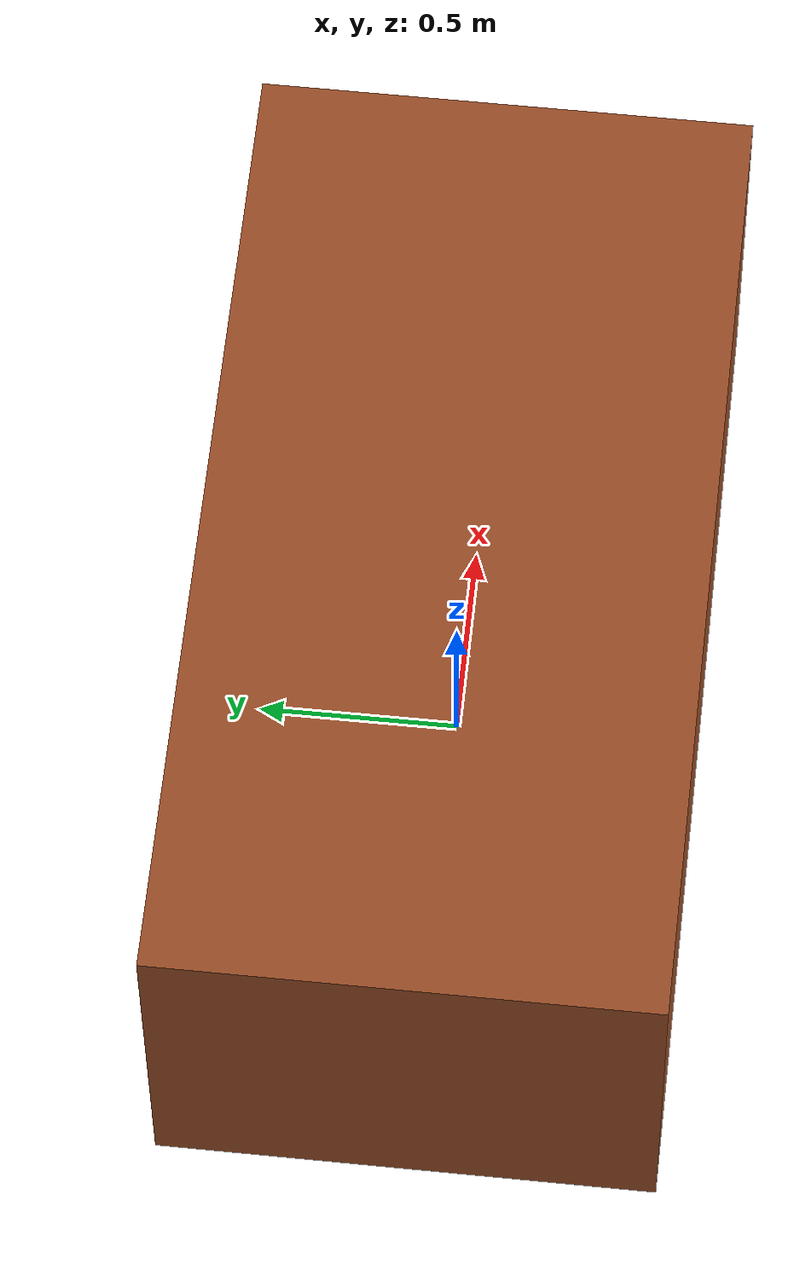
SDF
<?xml version="1.0"?>
<sdf version="1.7">
  <model name="technical_desk">
    <static>true</static>
    <link name="desk_link">
      <pose>0 0 0.5 0 0 0</pose>
      <collision name="desk_collision">
        <geometry>
          <box>
            <size>2.4384 1.2192 1.0</size>
          </box>
        </geometry>
      </collision>
      <visual name="desk_visual">
        <geometry>
          <box>
            <size>2.4384 1.2192 1.0</size>
          </box>
        </geometry>
        <material>
          <ambient>0.4 0.2 0.1 1</ambient>
          <diffuse>0.6 0.3 0.15 1</diffuse>
          <specular>0.1 0.1 0.1 1</specular>
        </material>
      </visual>
      <inertial>
        <mass>50</mass>
        <inertia>
          <ixx>5.76</ixx>
          <ixy>0</ixy>
          <ixz>0</ixz>
          <iyy>24.93</iyy>
          <iyz>0</iyz>
          <izz>30.56</izz>
        </inertia>
      </inertial>
    </link>
  </model>
</sdf>
